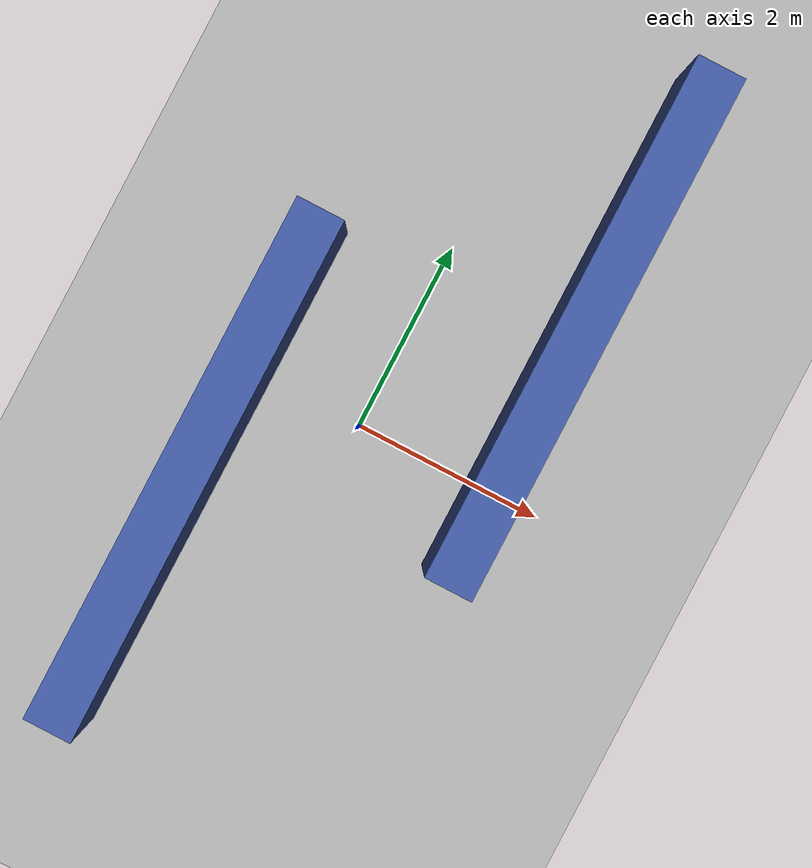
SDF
<?xml version="1.0"?>
<sdf version="1.9">
  <world name="demo">
    <plugin filename="gz-sim-physics-system" name="gz::sim::systems::Physics"/>
    <plugin filename="gz-sim-user-commands-system" name="gz::sim::systems::UserCommands"/>
    <plugin filename="gz-sim-scene-broadcaster-system" name="gz::sim::systems::SceneBroadcaster"/>
    <plugin filename="gz-sim-sensors-system" name="gz::sim::systems::Sensors">
      <render_engine>ogre2</render_engine>
    </plugin>
    <gui fullscreen="0">
      <plugin filename="MinimalScene" name="3D View">
        <gz-gui>
          <title>Navigation demo</title>
          <property type="bool" key="showTitleBar">false</property>
          <property type="string" key="state">docked</property>
        </gz-gui>
        <engine>ogre2</engine>
        <scene>scene</scene>
        <ambient_light>0.8 0.8 0.8</ambient_light>
        <background_color>0.92 0.94 0.97</background_color>
        <camera_pose>2 1 11 0 1.5708 0</camera_pose>
      </plugin>
      <plugin filename="GzSceneManager" name="Scene Manager">
        <gz-gui>
          <property key="state" type="string">floating</property>
          <property key="showTitleBar" type="bool">false</property>
          <property key="width" type="double">5</property>
          <property key="height" type="double">5</property>
        </gz-gui>
      </plugin>
    </gui>
    <gravity>0 0 -9.8</gravity>
    <light name="sun" type="directional">
      <pose>0 0 10 0 0 0</pose>
      <diffuse>0.9 0.9 0.9 1</diffuse>
      <specular>0.2 0.2 0.2 1</specular>
      <direction>-0.5 -0.5 -1</direction>
    </light>
    <model name="ground">
      <static>true</static>
      <link name="ground_link">
        <collision name="ground_collision">
          <geometry><plane><normal>0 0 1</normal><size>20 20</size></plane></geometry>
        </collision>
        <visual name="ground_visual">
          <geometry><plane><normal>0 0 1</normal><size>20 20</size></plane></geometry>
          <material><ambient>0.7 0.7 0.7 1</ambient><diffuse>0.7 0.7 0.7 1</diffuse></material>
        </visual>
      </link>
    </model>
    <model name="wall1">
      <static>true</static>
      <pose>-1.25 -1.1 0.5 0 0 0</pose>
      <link name="wall_link">
        <collision name="collision"><geometry><box><size>0.5 5.5 1</size></box></geometry></collision>
        <visual name="visual">
          <geometry><box><size>0.5 5.5 1</size></box></geometry>
          <material><ambient>0.25 0.35 0.65 1</ambient><diffuse>0.25 0.35 0.65 1</diffuse></material>
        </visual>
      </link>
    </model>
    <model name="wall2">
      <static>true</static>
      <pose>1.45 1.8 0.5 0 0 0</pose>
      <link name="wall_link">
        <collision name="collision"><geometry><box><size>0.5 5.5 1</size></box></geometry></collision>
        <visual name="visual">
          <geometry><box><size>0.5 5.5 1</size></box></geometry>
          <material><ambient>0.25 0.35 0.65 1</ambient><diffuse>0.25 0.35 0.65 1</diffuse></material>
        </visual>
      </link>
    </model>
  </world>
</sdf>
